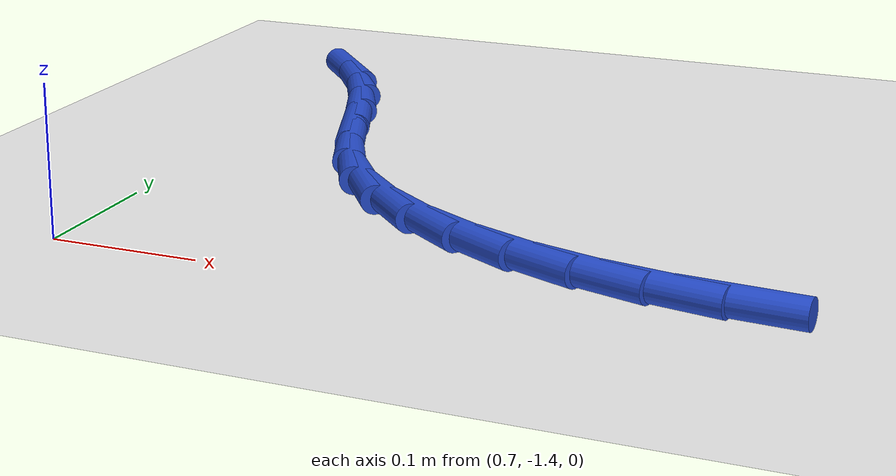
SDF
<sdf version="1.6">
 <world name="default">
  <model name="ground_plane">
   <static>1</static>
   <link name="link">
    <collision name="collision">
     <geometry><plane><normal>0 0 1</normal><size>100 100</size></plane></geometry>
     <surface><friction><ode><mu>100</mu><mu2>50</mu2></ode></friction></surface>
    </collision>
    <visual name="visual">
     <cast_shadows>0</cast_shadows>
     <geometry><plane><normal>0 0 1</normal><size>100 100</size></plane></geometry>
     <material>
      <script><uri>file://media/materials/scripts/gazebo.material</uri><name>Gazebo/WhiteGlow</name></script>
     </material>
    </visual>
   </link>
  </model>
  <model name="line">
   <link name="link_136">
    <pose>1.1250306639433747 -1.3671924123672015 0.01 0 1.57 -0.07420341828115434</pose>
    <collision name="collision">
     <geometry><cylinder><radius>0.01</radius><length>0.08</length></cylinder></geometry>
    </collision>
    <visual name="visual">
     <material>
      <script><name>Gazebo/Blue</name><uri>file://media/materials/scripts/gazebo.material</uri></script>
     </material>
     <geometry><cylinder><radius>0.01</radius><length>0.08</length></cylinder></geometry>
    </visual>
   </link>
   <link name="link_137">
    <pose>1.0789407027527378 -1.3637660887746819 0.01 0 1.57 -0.17545461150716818</pose>
    <collision name="collision">
     <geometry><cylinder><radius>0.01</radius><length>0.08</length></cylinder></geometry>
    </collision>
    <visual name="visual">
     <material>
      <script><name>Gazebo/Blue</name><uri>file://media/materials/scripts/gazebo.material</uri></script>
     </material>
     <geometry><cylinder><radius>0.01</radius><length>0.08</length></cylinder></geometry>
    </visual>
   </link>
   <link name="link_138">
    <pose>1.033255889847647 -1.3556672003555992 0.01 0 1.57 -0.27876562215316286</pose>
    <collision name="collision">
     <geometry><cylinder><radius>0.01</radius><length>0.08</length></cylinder></geometry>
    </collision>
    <visual name="visual">
     <material>
      <script><name>Gazebo/Blue</name><uri>file://media/materials/scripts/gazebo.material</uri></script>
     </material>
     <geometry><cylinder><radius>0.01</radius><length>0.08</length></cylinder></geometry>
    </visual>
   </link>
   <link name="link_139">
    <pose>0.9888849470909676 -1.3429674221625814 0.01 0 1.57 -0.3880440200167316</pose>
    <collision name="collision">
     <geometry><cylinder><radius>0.01</radius><length>0.08</length></cylinder></geometry>
    </collision>
    <visual name="visual">
     <material>
      <script><name>Gazebo/Blue</name><uri>file://media/materials/scripts/gazebo.material</uri></script>
     </material>
     <geometry><cylinder><radius>0.01</radius><length>0.08</length></cylinder></geometry>
    </visual>
   </link>
   <link name="link_140">
    <pose>0.946736596345567 -1.3257384292482566 0.01 0 1.57 -0.5073021852932555</pose>
    <collision name="collision">
     <geometry><cylinder><radius>0.01</radius><length>0.08</length></cylinder></geometry>
    </collision>
    <visual name="visual">
     <material>
      <script><name>Gazebo/Blue</name><uri>file://media/materials/scripts/gazebo.material</uri></script>
     </material>
     <geometry><cylinder><radius>0.01</radius><length>0.08</length></cylinder></geometry>
    </visual>
   </link>
   <link name="link_141">
    <pose>0.9077195594743109 -1.3040518966652526 0.01 0 1.57 -0.6405605371898357</pose>
    <collision name="collision">
     <geometry><cylinder><radius>0.01</radius><length>0.08</length></cylinder></geometry>
    </collision>
    <visual name="visual">
     <material>
      <script><name>Gazebo/Blue</name><uri>file://media/materials/scripts/gazebo.material</uri></script>
     </material>
     <geometry><cylinder><radius>0.01</radius><length>0.08</length></cylinder></geometry>
    </visual>
   </link>
   <link name="link_142">
    <pose>0.8727425583400659 -1.2779794994661968 0.01 0 1.57 -0.7913294723843142</pose>
    <collision name="collision">
     <geometry><cylinder><radius>0.01</radius><length>0.08</length></cylinder></geometry>
    </collision>
    <visual name="visual">
     <material>
      <script><name>Gazebo/Blue</name><uri>file://media/materials/scripts/gazebo.material</uri></script>
     </material>
     <geometry><cylinder><radius>0.01</radius><length>0.08</length></cylinder></geometry>
    </visual>
   </link>
   <link name="link_143">
    <pose>0.8427143148056995 -1.2475929127037184 0.01 0 1.57 -0.9603939797507045</pose>
    <collision name="collision">
     <geometry><cylinder><radius>0.01</radius><length>0.08</length></cylinder></geometry>
    </collision>
    <visual name="visual">
     <material>
      <script><name>Gazebo/Blue</name><uri>file://media/materials/scripts/gazebo.material</uri></script>
     </material>
     <geometry><cylinder><radius>0.01</radius><length>0.08</length></cylinder></geometry>
    </visual>
   </link>
   <link name="link_144">
    <pose>0.8185038281274296 -1.2129826675495845 0.01 0 1.57 -1.1115173410304204</pose>
    <collision name="collision">
     <geometry><cylinder><radius>0.01</radius><length>0.08</length></cylinder></geometry>
    </collision>
    <visual name="visual">
     <material>
      <script><name>Gazebo/Blue</name><uri>file://media/materials/scripts/gazebo.material</uri></script>
     </material>
     <geometry><cylinder><radius>0.01</radius><length>0.08</length></cylinder></geometry>
    </visual>
   </link>
   <link name="link_145">
    <pose>0.7996544591874242 -1.174868568962623 0.01 0 1.57 -1.2011673881451526</pose>
    <collision name="collision">
     <geometry><cylinder><radius>0.01</radius><length>0.08</length></cylinder></geometry>
    </collision>
    <visual name="visual">
     <material>
      <script><name>Gazebo/Blue</name><uri>file://media/materials/scripts/gazebo.material</uri></script>
     </material>
     <geometry><cylinder><radius>0.01</radius><length>0.08</length></cylinder></geometry>
    </visual>
   </link>
   <link name="link_146">
    <pose>0.78410426814562 -1.1347324499815834 0.01 0 1.57 -1.2299934915492057</pose>
    <collision name="collision">
     <geometry><cylinder><radius>0.01</radius><length>0.08</length></cylinder></geometry>
    </collision>
    <visual name="visual">
     <material>
      <script><name>Gazebo/Blue</name><uri>file://media/materials/scripts/gazebo.material</uri></script>
     </material>
     <geometry><cylinder><radius>0.01</radius><length>0.08</length></cylinder></geometry>
    </visual>
   </link>
   <link name="link_147">
    <pose>0.7696950168634203 -1.0941018559572546 0.01 0 1.57 -1.1993016470734048</pose>
    <collision name="collision">
     <geometry><cylinder><radius>0.01</radius><length>0.08</length></cylinder></geometry>
    </collision>
    <visual name="visual">
     <material>
      <script><name>Gazebo/Blue</name><uri>file://media/materials/scripts/gazebo.material</uri></script>
     </material>
     <geometry><cylinder><radius>0.01</radius><length>0.08</length></cylinder></geometry>
    </visual>
   </link>
   <link name="link_148">
    <pose>0.7542684672022276 -1.054504332240424 0.01 0 1.57 -1.1064180574993379</pose>
    <collision name="collision">
     <geometry><cylinder><radius>0.01</radius><length>0.08</length></cylinder></geometry>
    </collision>
    <visual name="visual">
     <material>
      <script><name>Gazebo/Blue</name><uri>file://media/materials/scripts/gazebo.material</uri></script>
     </material>
     <geometry><cylinder><radius>0.01</radius><length>0.08</length></cylinder></geometry>
    </visual>
   </link>
   <link name="link_149">
    <pose>0.735702880492852 -1.0174408855485513 0.01 0 1.57 -0.9809320762145727</pose>
    <collision name="collision">
     <geometry><cylinder><radius>0.01</radius><length>0.08</length></cylinder></geometry>
    </collision>
    <visual name="visual">
     <material>
      <script><name>Gazebo/Blue</name><uri>file://media/materials/scripts/gazebo.material</uri></script>
     </material>
     <geometry><cylinder><radius>0.01</radius><length>0.08</length></cylinder></geometry>
    </visual>
   </link>
   <link name="link_150">
    <pose>0.7130324619420603 -0.9835720399516693 0.01 0 1.57 -0.8659150488185821</pose>
    <collision name="collision">
     <geometry><cylinder><radius>0.01</radius><length>0.08</length></cylinder></geometry>
    </collision>
    <visual name="visual">
     <material>
      <script><name>Gazebo/Blue</name><uri>file://media/materials/scripts/gazebo.material</uri></script>
     </material>
     <geometry><cylinder><radius>0.01</radius><length>0.08</length></cylinder></geometry>
    </visual>
   </link>
  </model>
 </world>
</sdf>
